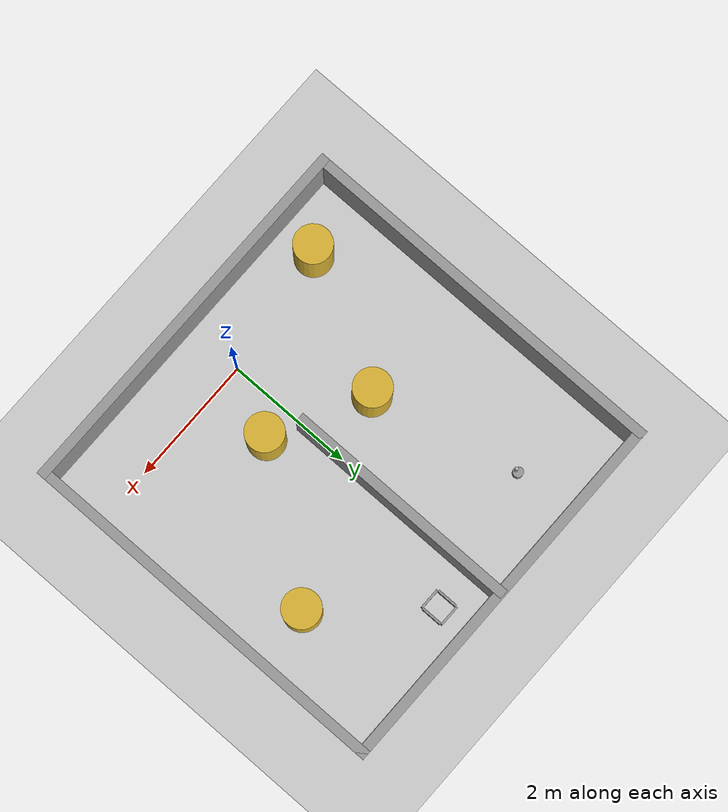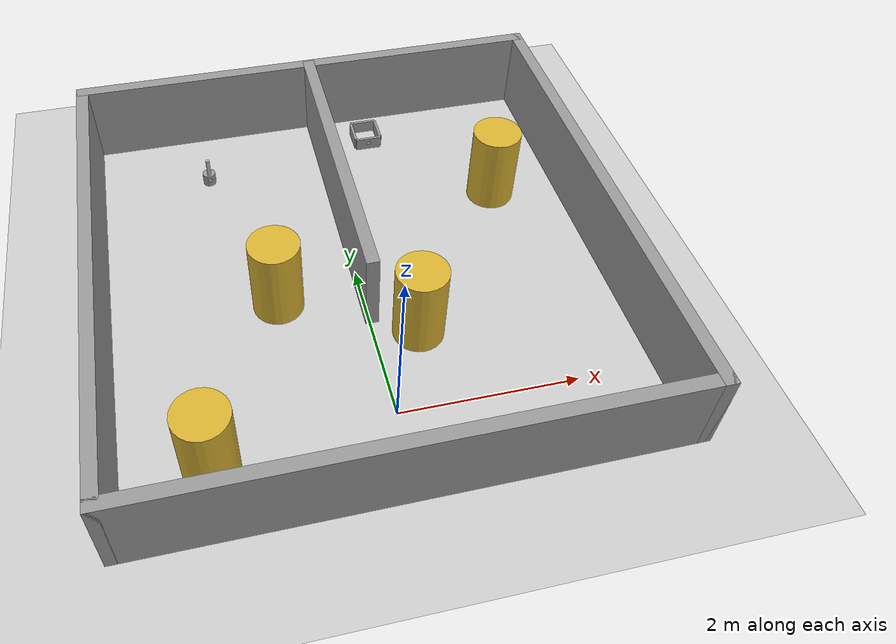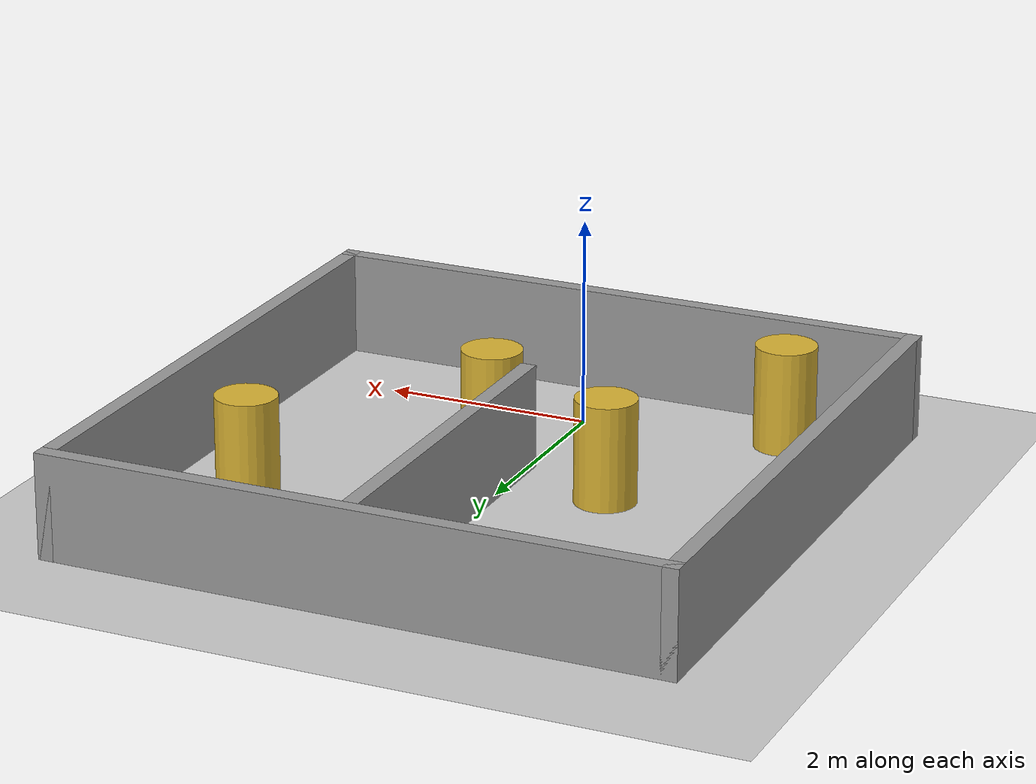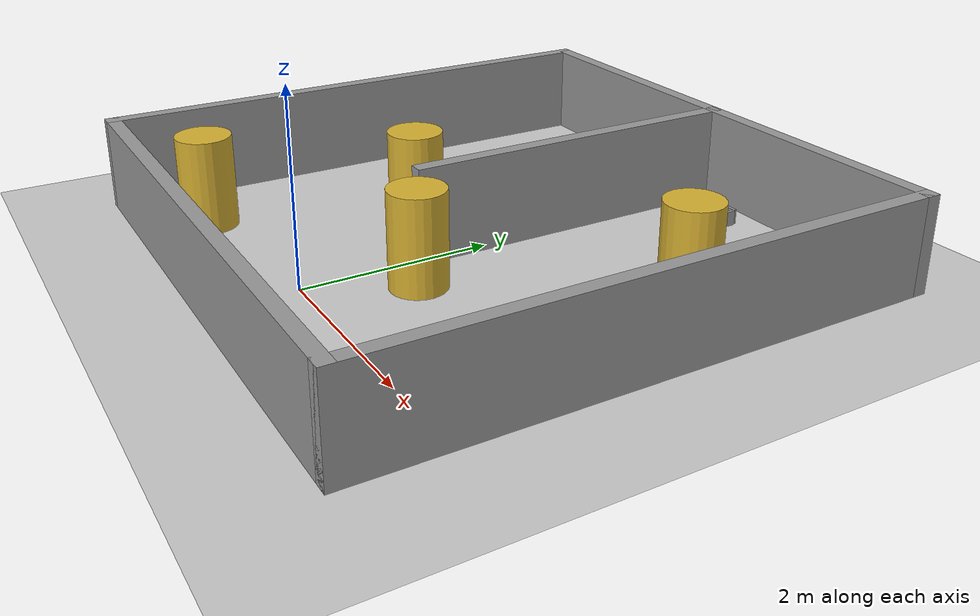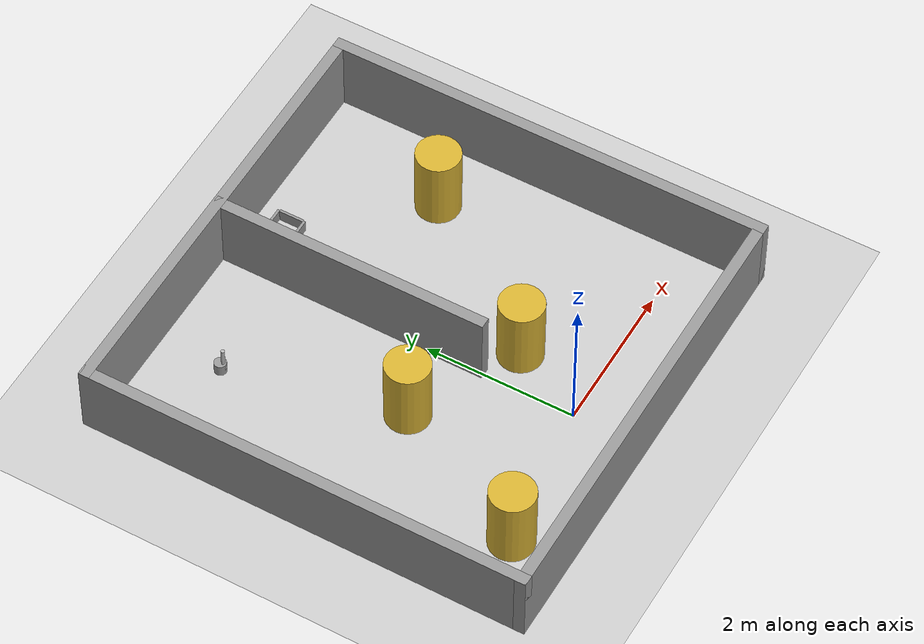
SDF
<sdf version="1.4">
  <world name="default">

    <!-- Global world -->
    <include>
      <uri>model://ground_plane</uri>
    </include>

    <!-- Global light source -->
    <include>
      <uri>model://sun</uri>
    </include>

    <physics type="ode">
      <real_time_update_rate>1000.0</real_time_update_rate>
      <max_step_size>0.001</max_step_size>
      <real_time_factor>1</real_time_factor>
      <ode>
        <solver>
          <type>quick</type>
          <iters>150</iters>
          <precon_iters>0</precon_iters>
          <sor>1.400000</sor>
          <use_dynamic_moi_rescaling>1</use_dynamic_moi_rescaling>
        </solver>
        <constraints>
          <cfm>0.00001</cfm>
          <erp>0.2</erp>
          <contact_max_correcting_vel>2000.000000</contact_max_correcting_vel>
          <contact_surface_layer>0.01000</contact_surface_layer>
        </constraints>
      </ode>
    </physics>

    <!-- Load world -->
    <include>
      <uri>model://turtlebot3_rooms</uri>
    </include>

    <scene>
      <ambient>0.4 0.4 0.4 1</ambient>
      <background>0.7 0.7 0.7 1</background>
      <shadows>true</shadows>
    </scene>

    <gui fullscreen='0'>
      <camera name='user_camera'>
        <pose>0.8 2.0 12.0 0 1.5708 1.5708</pose>
        <view_controller>orbit</view_controller>
      </camera>
    </gui>

  </world>
</sdf>

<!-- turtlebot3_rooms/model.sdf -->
<sdf version='1.6'>
  <model name='turtlebot3_rooms'>
    <link name='link_0'>
      <pose frame=''>0.683315 4.23233 0 0 -0 0</pose>
      <inertial>
        <mass>0.00350583</mass>
        <inertia>
          <ixx>2.82745e-05</ixx>
          <ixy>0</ixy>
          <ixz>0</ixz>
          <iyy>5.98732e-05</iyy>
          <iyz>0</iyz>
          <izz>3.22857e-05</izz>
        </inertia>
        <pose frame=''>0 0 0 0 -0 0</pose>
      </inertial>
      <visual name='visual'>
        <pose frame=''>0 0 0 0 -0 0</pose>
        <geometry>
          <box>
            <size>0.330665 0.034321 0.309211</size>
          </box>
        </geometry>
        <material>
          <lighting>1</lighting>
          <script>
            <uri>file://media/materials/scripts/gazebo.material</uri>
            <name>Gazebo/Grey</name>
          </script>
          <ambient>0.3 0.3 0.3 1</ambient>
          <diffuse>0.7 0.7 0.7 1</diffuse>
          <specular>0.01 0.01 0.01 1</specular>
          <emissive>0 0 0 1</emissive>
        </material>
        <cast_shadows>1</cast_shadows>
        <transparency>0</transparency>
      </visual>
      <collision name='collision'>
        <laser_retro>0</laser_retro>
        <max_contacts>10</max_contacts>
        <pose frame=''>0 0 0 0 -0 0</pose>
        <geometry>
          <box>
            <size>0.330665 0.034321 0.309211</size>
          </box>
        </geometry>
        <surface>
          <friction>
            <ode>
              <mu>1</mu>
              <mu2>1</mu2>
              <fdir1>0 0 0</fdir1>
              <slip1>0</slip1>
              <slip2>0</slip2>
            </ode>
            <torsional>
              <coefficient>1</coefficient>
              <patch_radius>0</patch_radius>
              <surface_radius>0</surface_radius>
              <use_patch_radius>1</use_patch_radius>
              <ode>
                <slip>0</slip>
              </ode>
            </torsional>
          </friction>
          <bounce>
            <restitution_coefficient>0</restitution_coefficient>
            <threshold>1e+06</threshold>
          </bounce>
          <contact>
            <collide_without_contact>0</collide_without_contact>
            <collide_without_contact_bitmask>1</collide_without_contact_bitmask>
            <collide_bitmask>1</collide_bitmask>
            <ode>
              <soft_cfm>0</soft_cfm>
              <soft_erp>0.2</soft_erp>
              <kp>1e+13</kp>
              <kd>1</kd>
              <max_vel>0.01</max_vel>
              <min_depth>0</min_depth>
            </ode>
            <bullet>
              <split_impulse>1</split_impulse>
              <split_impulse_penetration_threshold>-0.01</split_impulse_penetration_threshold>
              <soft_cfm>0</soft_cfm>
              <soft_erp>0.2</soft_erp>
              <kp>1e+13</kp>
              <kd>1</kd>
            </bullet>
          </contact>
        </surface>
      </collision>
    </link>
    <link name='link_0_clone'>
      <pose frame=''>0.682862 4.5976 0 0 -0 0</pose>
      <inertial>
        <mass>0.00350583</mass>
        <inertia>
          <ixx>2.82745e-05</ixx>
          <ixy>0</ixy>
          <ixz>0</ixz>
          <iyy>5.98732e-05</iyy>
          <iyz>0</iyz>
          <izz>3.22857e-05</izz>
        </inertia>
        <pose frame=''>0 0 0 0 -0 0</pose>
      </inertial>
      <visual name='visual'>
        <pose frame=''>0 0 0 0 -0 0</pose>
        <geometry>
          <box>
            <size>0.330665 0.034321 0.309211</size>
          </box>
        </geometry>
        <material>
          <lighting>1</lighting>
          <script>
            <uri>file://media/materials/scripts/gazebo.material</uri>
            <name>Gazebo/Grey</name>
          </script>
          <ambient>0.3 0.3 0.3 1</ambient>
          <diffuse>0.7 0.7 0.7 1</diffuse>
          <specular>0.01 0.01 0.01 1</specular>
          <emissive>0 0 0 1</emissive>
          <shader type='pixel'/>
        </material>
        <cast_shadows>1</cast_shadows>
        <transparency>0</transparency>
      </visual>
      <collision name='collision'>
        <laser_retro>0</laser_retro>
        <max_contacts>10</max_contacts>
        <pose frame=''>0 0 0 0 -0 0</pose>
        <geometry>
          <box>
            <size>0.330665 0.034321 0.309211</size>
          </box>
        </geometry>
        <surface>
          <friction>
            <ode>
              <mu>1</mu>
              <mu2>1</mu2>
              <fdir1>0 0 0</fdir1>
              <slip1>0</slip1>
              <slip2>0</slip2>
            </ode>
            <torsional>
              <coefficient>1</coefficient>
              <patch_radius>0</patch_radius>
              <surface_radius>0</surface_radius>
              <use_patch_radius>1</use_patch_radius>
              <ode>
                <slip>0</slip>
              </ode>
            </torsional>
          </friction>
          <bounce>
            <restitution_coefficient>0</restitution_coefficient>
            <threshold>1e+06</threshold>
          </bounce>
          <contact>
            <collide_without_contact>0</collide_without_contact>
            <collide_without_contact_bitmask>1</collide_without_contact_bitmask>
            <collide_bitmask>1</collide_bitmask>
            <ode>
              <soft_cfm>0</soft_cfm>
              <soft_erp>0.2</soft_erp>
              <kp>1e+13</kp>
              <kd>1</kd>
              <max_vel>0.01</max_vel>
              <min_depth>0</min_depth>
            </ode>
            <bullet>
              <split_impulse>1</split_impulse>
              <split_impulse_penetration_threshold>-0.01</split_impulse_penetration_threshold>
              <soft_cfm>0</soft_cfm>
              <soft_erp>0.2</soft_erp>
              <kp>1e+13</kp>
              <kd>1</kd>
            </bullet>
          </contact>
        </surface>
      </collision>
    </link>
    <link name='link_0_clone_0'>
      <pose frame=''>0.84811 4.41524 0 0 -0 1.5708</pose>
      <inertial>
        <mass>0.00350583</mass>
        <inertia>
          <ixx>2.82745e-05</ixx>
          <ixy>0</ixy>
          <ixz>0</ixz>
          <iyy>5.98732e-05</iyy>
          <iyz>0</iyz>
          <izz>3.22857e-05</izz>
        </inertia>
        <pose frame=''>0 0 0 0 -0 0</pose>
      </inertial>
      <visual name='visual'>
        <pose frame=''>0 0 0 0 -0 0</pose>
        <geometry>
          <box>
            <size>0.330665 0.034321 0.309211</size>
          </box>
        </geometry>
        <material>
          <lighting>1</lighting>
          <script>
            <uri>file://media/materials/scripts/gazebo.material</uri>
            <name>Gazebo/Grey</name>
          </script>
          <ambient>0.3 0.3 0.3 1</ambient>
          <diffuse>0.7 0.7 0.7 1</diffuse>
          <specular>0.01 0.01 0.01 1</specular>
          <emissive>0 0 0 1</emissive>
          <shader type='pixel'/>
        </material>
        <cast_shadows>1</cast_shadows>
        <transparency>0</transparency>
      </visual>
      <collision name='collision'>
        <laser_retro>0</laser_retro>
        <max_contacts>10</max_contacts>
        <pose frame=''>0 0 0 0 -0 0</pose>
        <geometry>
          <box>
            <size>0.330665 0.034321 0.309211</size>
          </box>
        </geometry>
        <surface>
          <friction>
            <ode>
              <mu>1</mu>
              <mu2>1</mu2>
              <fdir1>0 0 0</fdir1>
              <slip1>0</slip1>
              <slip2>0</slip2>
            </ode>
            <torsional>
              <coefficient>1</coefficient>
              <patch_radius>0</patch_radius>
              <surface_radius>0</surface_radius>
              <use_patch_radius>1</use_patch_radius>
              <ode>
                <slip>0</slip>
              </ode>
            </torsional>
          </friction>
          <bounce>
            <restitution_coefficient>0</restitution_coefficient>
            <threshold>1e+06</threshold>
          </bounce>
          <contact>
            <collide_without_contact>0</collide_without_contact>
            <collide_without_contact_bitmask>1</collide_without_contact_bitmask>
            <collide_bitmask>1</collide_bitmask>
            <ode>
              <soft_cfm>0</soft_cfm>
              <soft_erp>0.2</soft_erp>
              <kp>1e+13</kp>
              <kd>1</kd>
              <max_vel>0.01</max_vel>
              <min_depth>0</min_depth>
            </ode>
            <bullet>
              <split_impulse>1</split_impulse>
              <split_impulse_penetration_threshold>-0.01</split_impulse_penetration_threshold>
              <soft_cfm>0</soft_cfm>
              <soft_erp>0.2</soft_erp>
              <kp>1e+13</kp>
              <kd>1</kd>
            </bullet>
          </contact>
        </surface>
      </collision>
    </link>
    <link name='link_0_clone_1'>
      <pose frame=''>0.513944 4.41515 0 0 0 -1.5708</pose>
      <inertial>
        <mass>0.00350583</mass>
        <inertia>
          <ixx>2.82745e-05</ixx>
          <ixy>0</ixy>
          <ixz>0</ixz>
          <iyy>5.98732e-05</iyy>
          <iyz>0</iyz>
          <izz>3.22857e-05</izz>
        </inertia>
        <pose frame=''>0 0 0 0 -0 0</pose>
      </inertial>
      <visual name='visual'>
        <pose frame=''>0 0 0 0 -0 0</pose>
        <geometry>
          <box>
            <size>0.330665 0.034321 0.309211</size>
          </box>
        </geometry>
        <material>
          <lighting>1</lighting>
          <script>
            <uri>file://media/materials/scripts/gazebo.material</uri>
            <name>Gazebo/Grey</name>
          </script>
          <ambient>0.3 0.3 0.3 1</ambient>
          <diffuse>0.7 0.7 0.7 1</diffuse>
          <specular>0.01 0.01 0.01 1</specular>
          <emissive>0 0 0 1</emissive>
          <shader type='pixel'/>
        </material>
        <cast_shadows>1</cast_shadows>
        <transparency>0</transparency>
      </visual>
      <collision name='collision'>
        <laser_retro>0</laser_retro>
        <max_contacts>10</max_contacts>
        <pose frame=''>0 0 0 0 -0 0</pose>
        <geometry>
          <box>
            <size>0.330665 0.034321 0.309211</size>
          </box>
        </geometry>
        <surface>
          <friction>
            <ode>
              <mu>1</mu>
              <mu2>1</mu2>
              <fdir1>0 0 0</fdir1>
              <slip1>0</slip1>
              <slip2>0</slip2>
            </ode>
            <torsional>
              <coefficient>1</coefficient>
              <patch_radius>0</patch_radius>
              <surface_radius>0</surface_radius>
              <use_patch_radius>1</use_patch_radius>
              <ode>
                <slip>0</slip>
              </ode>
            </torsional>
          </friction>
          <bounce>
            <restitution_coefficient>0</restitution_coefficient>
            <threshold>1e+06</threshold>
          </bounce>
          <contact>
            <collide_without_contact>0</collide_without_contact>
            <collide_without_contact_bitmask>1</collide_without_contact_bitmask>
            <collide_bitmask>1</collide_bitmask>
            <ode>
              <soft_cfm>0</soft_cfm>
              <soft_erp>0.2</soft_erp>
              <kp>1e+13</kp>
              <kd>1</kd>
              <max_vel>0.01</max_vel>
              <min_depth>0</min_depth>
            </ode>
            <bullet>
              <split_impulse>1</split_impulse>
              <split_impulse_penetration_threshold>-0.01</split_impulse_penetration_threshold>
              <soft_cfm>0</soft_cfm>
              <soft_erp>0.2</soft_erp>
              <kp>1e+13</kp>
              <kd>1</kd>
            </bullet>
          </contact>
        </surface>
      </collision>
    </link>
      <link name='link_0'>
        <pose frame=''>-1.50431 3.99994 0 0 -0 0</pose>
        <inertial>
          <mass>0.00123934</mass>
          <inertia>
            <ixx>2.13894e-06</ixx>
            <ixy>0</ixy>
            <ixz>0</ixz>
            <iyy>2.13894e-06</iyy>
            <iyz>0</iyz>
            <izz>3.73085e-06</izz>
          </inertia>
          <pose frame=''>0 0 0 0 -0 0</pose>
        </inertial>
        <visual name='visual'>
          <pose frame=''>0 0 0 0 -0 0</pose>
          <geometry>
            <cylinder>
              <radius>0.08</radius>
              <length>0.3</length>
            </cylinder>
          </geometry>
          <material>
            <lighting>1</lighting>
            <script>
              <uri>file://media/materials/scripts/gazebo.material</uri>
              <name>Gazebo/Grey</name>
            </script>
            <ambient>0.3 0.3 0.3 1</ambient>
            <diffuse>0.7 0.7 0.7 1</diffuse>
            <specular>0.01 0.01 0.01 1</specular>
            <emissive>0 0 0 1</emissive>
          </material>
          <cast_shadows>1</cast_shadows>
          <transparency>0</transparency>
        </visual>
        <collision name='collision'>
          <laser_retro>0</laser_retro>
          <max_contacts>10</max_contacts>
          <pose frame=''>0 0 0 0 -0 0</pose>
          <geometry>
            <cylinder>
              <radius>0.08</radius>
              <length>0.3</length>
            </cylinder>
          </geometry>
          <surface>
            <friction>
              <ode>
                <mu>1</mu>
                <mu2>1</mu2>
                <fdir1>0 0 0</fdir1>
                <slip1>0</slip1>
                <slip2>0</slip2>
              </ode>
              <torsional>
                <coefficient>1</coefficient>
                <patch_radius>0</patch_radius>
                <surface_radius>0</surface_radius>
                <use_patch_radius>1</use_patch_radius>
                <ode>
                  <slip>0</slip>
                </ode>
              </torsional>
            </friction>
            <bounce>
              <restitution_coefficient>0</restitution_coefficient>
              <threshold>1e+06</threshold>
            </bounce>
            <contact>
              <collide_without_contact>0</collide_without_contact>
              <collide_without_contact_bitmask>1</collide_without_contact_bitmask>
              <collide_bitmask>1</collide_bitmask>
              <ode>
                <soft_cfm>0</soft_cfm>
                <soft_erp>0.2</soft_erp>
                <kp>1e+13</kp>
                <kd>1</kd>
                <max_vel>0.01</max_vel>
                <min_depth>0</min_depth>
              </ode>
              <bullet>
                <split_impulse>1</split_impulse>
                <split_impulse_penetration_threshold>-0.01</split_impulse_penetration_threshold>
                <soft_cfm>0</soft_cfm>
                <soft_erp>0.2</soft_erp>
                <kp>1e+13</kp>
                <kd>1</kd>
              </bullet>
            </contact>
          </surface>
        </collision>
      </link>
      <link name='link_1'>
        <pose frame=''>-0.960899 1.71925 0.5 0 -0 0</pose>
        <inertial>
          <mass>0.341779</mass>
          <inertia>
            <ixx>0.0357823</ixx>
            <ixy>0</ixy>
            <ixz>0</ixz>
            <iyy>0.0357823</iyy>
            <iyz>0</iyz>
            <izz>0.0146016</izz>
          </inertia>
          <pose frame=''>0 0 0 0 -0 0</pose>
        </inertial>
        <visual name='visual'>
          <pose frame=''>0 0 0 0 -0 0</pose>
          <geometry>
            <cylinder>
              <radius>0.292309</radius>
              <length>1</length>
            </cylinder>
          </geometry>
          <material>
            <lighting>1</lighting>
            <script>
              <uri>file://media/materials/scripts/gazebo.material</uri>
              <name>Gazebo/Gold</name>
            </script>
            <ambient>0.3 0.3 0.3 1</ambient>
            <diffuse>0.7 0.7 0.7 1</diffuse>
            <specular>0.01 0.01 0.01 1</specular>
            <emissive>0 0 0 1</emissive>
          </material>
          <cast_shadows>1</cast_shadows>
          <transparency>0</transparency>
        </visual>
        <collision name='collision'>
          <laser_retro>0</laser_retro>
          <max_contacts>10</max_contacts>
          <pose frame=''>0 0 0 0 -0 0</pose>
          <geometry>
            <cylinder>
              <radius>0.292309</radius>
              <length>1</length>
            </cylinder>
          </geometry>
          <surface>
            <friction>
              <ode>
                <mu>1</mu>
                <mu2>1</mu2>
                <fdir1>0 0 0</fdir1>
                <slip1>0</slip1>
                <slip2>0</slip2>
              </ode>
              <torsional>
                <coefficient>1</coefficient>
                <patch_radius>0</patch_radius>
                <surface_radius>0</surface_radius>
                <use_patch_radius>1</use_patch_radius>
                <ode>
                  <slip>0</slip>
                </ode>
              </torsional>
            </friction>
            <bounce>
              <restitution_coefficient>0</restitution_coefficient>
              <threshold>1e+06</threshold>
            </bounce>
            <contact>
              <collide_without_contact>0</collide_without_contact>
              <collide_without_contact_bitmask>1</collide_without_contact_bitmask>
              <collide_bitmask>1</collide_bitmask>
              <ode>
                <soft_cfm>0</soft_cfm>
                <soft_erp>0.2</soft_erp>
                <kp>1e+13</kp>
                <kd>1</kd>
                <max_vel>0.01</max_vel>
                <min_depth>0</min_depth>
              </ode>
              <bullet>
                <split_impulse>1</split_impulse>
                <split_impulse_penetration_threshold>-0.01</split_impulse_penetration_threshold>
                <soft_cfm>0</soft_cfm>
                <soft_erp>0.2</soft_erp>
                <kp>1e+13</kp>
                <kd>1</kd>
              </bullet>
            </contact>
          </surface>
        </collision>
      </link>
      <link name='link_1_clone'>
        <pose frame=''>-1.9402 -0.24147 0.5 0 -0 0</pose>
        <inertial>
          <mass>0.341779</mass>
          <inertia>
            <ixx>0.0357823</ixx>
            <ixy>0</ixy>
            <ixz>0</ixz>
            <iyy>0.0357823</iyy>
            <iyz>0</iyz>
            <izz>0.0146016</izz>
          </inertia>
          <pose frame=''>0 0 0 0 -0 0</pose>
        </inertial>
        <visual name='visual'>
          <pose frame=''>0 0 0 0 -0 0</pose>
          <geometry>
            <cylinder>
              <radius>0.292309</radius>
              <length>1</length>
            </cylinder>
          </geometry>
          <material>
            <lighting>1</lighting>
            <script>
              <uri>file://media/materials/scripts/gazebo.material</uri>
              <name>Gazebo/Gold</name>
            </script>
            <ambient>0.3 0.3 0.3 1</ambient>
            <diffuse>0.7 0.7 0.7 1</diffuse>
            <specular>0.01 0.01 0.01 1</specular>
            <emissive>0 0 0 1</emissive>
            <shader type='pixel'/>
          </material>
          <cast_shadows>1</cast_shadows>
          <transparency>0</transparency>
        </visual>
        <collision name='collision'>
          <laser_retro>0</laser_retro>
          <max_contacts>10</max_contacts>
          <pose frame=''>0 0 0 0 -0 0</pose>
          <geometry>
            <cylinder>
              <radius>0.292309</radius>
              <length>1</length>
            </cylinder>
          </geometry>
          <surface>
            <friction>
              <ode>
                <mu>1</mu>
                <mu2>1</mu2>
                <fdir1>0 0 0</fdir1>
                <slip1>0</slip1>
                <slip2>0</slip2>
              </ode>
              <torsional>
                <coefficient>1</coefficient>
                <patch_radius>0</patch_radius>
                <surface_radius>0</surface_radius>
                <use_patch_radius>1</use_patch_radius>
                <ode>
                  <slip>0</slip>
                </ode>
              </torsional>
            </friction>
            <bounce>
              <restitution_coefficient>0</restitution_coefficient>
              <threshold>1e+06</threshold>
            </bounce>
            <contact>
              <collide_without_contact>0</collide_without_contact>
              <collide_without_contact_bitmask>1</collide_without_contact_bitmask>
              <collide_bitmask>1</collide_bitmask>
              <ode>
                <soft_cfm>0</soft_cfm>
                <soft_erp>0.2</soft_erp>
                <kp>1e+13</kp>
                <kd>1</kd>
                <max_vel>0.01</max_vel>
                <min_depth>0</min_depth>
              </ode>
              <bullet>
                <split_impulse>1</split_impulse>
                <split_impulse_penetration_threshold>-0.01</split_impulse_penetration_threshold>
                <soft_cfm>0</soft_cfm>
                <soft_erp>0.2</soft_erp>
                <kp>1e+13</kp>
                <kd>1</kd>
              </bullet>
            </contact>
          </surface>
        </collision>
      </link>
      <link name='link_1_clone_0'>
        <pose frame=''>0.49715 0.99994 0.5 0 -0 0</pose>
        <inertial>
          <mass>0.341779</mass>
          <inertia>
            <ixx>0.0357823</ixx>
            <ixy>0</ixy>
            <ixz>0</ixz>
            <iyy>0.0357823</iyy>
            <iyz>0</iyz>
            <izz>0.0146016</izz>
          </inertia>
          <pose frame=''>0 0 0 0 -0 0</pose>
        </inertial>
        <visual name='visual'>
          <pose frame=''>0 0 0 0 -0 0</pose>
          <geometry>
            <cylinder>
              <radius>0.292309</radius>
              <length>1</length>
            </cylinder>
          </geometry>
          <material>
            <lighting>1</lighting>
            <script>
              <uri>file://media/materials/scripts/gazebo.material</uri>
              <name>Gazebo/Gold</name>
            </script>
            <ambient>0.3 0.3 0.3 1</ambient>
            <diffuse>0.7 0.7 0.7 1</diffuse>
            <specular>0.01 0.01 0.01 1</specular>
            <emissive>0 0 0 1</emissive>
            <shader type='pixel'/>
          </material>
          <cast_shadows>1</cast_shadows>
          <transparency>0</transparency>
        </visual>
        <collision name='collision'>
          <laser_retro>0</laser_retro>
          <max_contacts>10</max_contacts>
          <pose frame=''>0 0 0 0 -0 0</pose>
          <geometry>
            <cylinder>
              <radius>0.292309</radius>
              <length>1</length>
            </cylinder>
          </geometry>
          <surface>
            <friction>
              <ode>
                <mu>1</mu>
                <mu2>1</mu2>
                <fdir1>0 0 0</fdir1>
                <slip1>0</slip1>
                <slip2>0</slip2>
              </ode>
              <torsional>
                <coefficient>1</coefficient>
                <patch_radius>0</patch_radius>
                <surface_radius>0</surface_radius>
                <use_patch_radius>1</use_patch_radius>
                <ode>
                  <slip>0</slip>
                </ode>
              </torsional>
            </friction>
            <bounce>
              <restitution_coefficient>0</restitution_coefficient>
              <threshold>1e+06</threshold>
            </bounce>
            <contact>
              <collide_without_contact>0</collide_without_contact>
              <collide_without_contact_bitmask>1</collide_without_contact_bitmask>
              <collide_bitmask>1</collide_bitmask>
              <ode>
                <soft_cfm>0</soft_cfm>
                <soft_erp>0.2</soft_erp>
                <kp>1e+13</kp>
                <kd>1</kd>
                <max_vel>0.01</max_vel>
                <min_depth>0</min_depth>
              </ode>
              <bullet>
                <split_impulse>1</split_impulse>
                <split_impulse_penetration_threshold>-0.01</split_impulse_penetration_threshold>
                <soft_cfm>0</soft_cfm>
                <soft_erp>0.2</soft_erp>
                <kp>1e+13</kp>
                <kd>1</kd>
              </bullet>
            </contact>
          </surface>
        </collision>
      </link>
      <link name='link_1_clone_1'>
        <pose frame=''>2 2.99994 0.5 0 -0 0</pose>
        <inertial>
          <mass>0.341779</mass>
          <inertia>
            <ixx>0.0357823</ixx>
            <ixy>0</ixy>
            <ixz>0</ixz>
            <iyy>0.0357823</iyy>
            <iyz>0</iyz>
            <izz>0.0146016</izz>
          </inertia>
          <pose frame=''>0 0 0 0 -0 0</pose>
        </inertial>
        <visual name='visual'>
          <pose frame=''>0 0 0 0 -0 0</pose>
          <geometry>
            <cylinder>
              <radius>0.292309</radius>
              <length>1</length>
            </cylinder>
          </geometry>
          <material>
            <lighting>1</lighting>
            <script>
              <uri>file://media/materials/scripts/gazebo.material</uri>
              <name>Gazebo/Gold</name>
            </script>
            <ambient>0.3 0.3 0.3 1</ambient>
            <diffuse>0.7 0.7 0.7 1</diffuse>
            <specular>0.01 0.01 0.01 1</specular>
            <emissive>0 0 0 1</emissive>
            <shader type='pixel'/>
          </material>
          <cast_shadows>1</cast_shadows>
          <transparency>0</transparency>
        </visual>
        <collision name='collision'>
          <laser_retro>0</laser_retro>
          <max_contacts>10</max_contacts>
          <pose frame=''>0 0 0 0 -0 0</pose>
          <geometry>
            <cylinder>
              <radius>0.292309</radius>
              <length>1</length>
            </cylinder>
          </geometry>
          <surface>
            <friction>
              <ode>
                <mu>1</mu>
                <mu2>1</mu2>
                <fdir1>0 0 0</fdir1>
                <slip1>0</slip1>
                <slip2>0</slip2>
              </ode>
              <torsional>
                <coefficient>1</coefficient>
                <patch_radius>0</patch_radius>
                <surface_radius>0</surface_radius>
                <use_patch_radius>1</use_patch_radius>
                <ode>
                  <slip>0</slip>
                </ode>
              </torsional>
            </friction>
            <bounce>
              <restitution_coefficient>0</restitution_coefficient>
              <threshold>1e+06</threshold>
            </bounce>
            <contact>
              <collide_without_contact>0</collide_without_contact>
              <collide_without_contact_bitmask>1</collide_without_contact_bitmask>
              <collide_bitmask>1</collide_bitmask>
              <ode>
                <soft_cfm>0</soft_cfm>
                <soft_erp>0.2</soft_erp>
                <kp>1e+13</kp>
                <kd>1</kd>
                <max_vel>0.01</max_vel>
                <min_depth>0</min_depth>
              </ode>
              <bullet>
                <split_impulse>1</split_impulse>
                <split_impulse_penetration_threshold>-0.01</split_impulse_penetration_threshold>
                <soft_cfm>0</soft_cfm>
                <soft_erp>0.2</soft_erp>
                <kp>1e+13</kp>
                <kd>1</kd>
              </bullet>
            </contact>
          </surface>
        </collision>
      </link>
      <model name='ar_marker'>
        <static>1</static>
        <link name='link'>
          <visual name='visual'>
            <geometry>
              <mesh>
                <uri>model://ar_marker/meshes/Marker0.dae</uri>
                <scale>0.1 0.1 0.1</scale>
              </mesh>
            </geometry>
          </visual>
        </link>
        <pose frame=''>-1.5 3.92 0.066 0 0 -1.5708</pose>
      </model>
      <model name='ar_marker_clone'>
        <static>1</static>
        <link name='link'>
          <visual name='visual'>
            <geometry>
              <mesh>
                <uri>model://ar_marker/meshes/Marker0.dae</uri>
                <scale>0.1 0.1 0.1</scale>
              </mesh>
            </geometry>
          </visual>
        </link>
        <pose frame=''>0.68 4.21 0.066 0 0 -1.5708</pose>
      </model>
      <model name='rooms'>
        <pose frame=''>0 1.99994 0 0 -0 0</pose>
        <link name='Wall_14'>
          <collision name='Wall_14_Collision'>
            <geometry>
              <box>
                <size>6 0.15 1</size>
              </box>
            </geometry>
            <pose frame=''>0 0 0.5 0 -0 0</pose>
          </collision>
          <visual name='Wall_14_Visual'>
            <pose frame=''>0 0 0.5 0 -0 0</pose>
            <geometry>
              <box>
                <size>6 0.15 1</size>
              </box>
            </geometry>
            <material>
              <script>
                <uri>file://media/materials/scripts/gazebo.material</uri>
                <name>Gazebo/Grey</name>
              </script>
              <ambient>1 1 1 1</ambient>
            </material>
          </visual>
          <pose frame=''>0 -2.925 0 0 -0 0</pose>
        </link>
        <link name='Wall_16'>
          <collision name='Wall_16_Collision'>
            <geometry>
              <box>
                <size>6 0.15 1</size>
              </box>
            </geometry>
            <pose frame=''>0 0 0.5 0 -0 0</pose>
          </collision>
          <visual name='Wall_16_Visual'>
            <pose frame=''>0 0 0.5 0 -0 0</pose>
            <geometry>
              <box>
                <size>6 0.15 1</size>
              </box>
            </geometry>
            <material>
              <script>
                <uri>file://media/materials/scripts/gazebo.material</uri>
                <name>Gazebo/Grey</name>
              </script>
              <ambient>1 1 1 1</ambient>
            </material>
          </visual>
          <pose frame=''>-2.925 0 0 0 -0 1.5708</pose>
        </link>
        <link name='Wall_18'>
          <collision name='Wall_18_Collision'>
            <geometry>
              <box>
                <size>6 0.15 1</size>
              </box>
            </geometry>
            <pose frame=''>0 0 0.5 0 -0 0</pose>
          </collision>
          <visual name='Wall_18_Visual'>
            <pose frame=''>0 0 0.5 0 -0 0</pose>
            <geometry>
              <box>
                <size>6 0.15 1</size>
              </box>
            </geometry>
            <material>
              <script>
                <uri>file://media/materials/scripts/gazebo.material</uri>
                <name>Gazebo/Grey</name>
              </script>
              <ambient>1 1 1 1</ambient>
            </material>
          </visual>
          <pose frame=''>2.925 0 0 0 -0 1.5708</pose>
        </link>
        <link name='Wall_20'>
          <collision name='Wall_20_Collision'>
            <geometry>
              <box>
                <size>6 0.15 1</size>
              </box>
            </geometry>
            <pose frame=''>0 0 0.5 0 -0 0</pose>
          </collision>
          <visual name='Wall_20_Visual'>
            <pose frame=''>0 0 0.5 0 -0 0</pose>
            <geometry>
              <box>
                <size>6 0.15 1</size>
              </box>
            </geometry>
            <material>
              <script>
                <uri>file://media/materials/scripts/gazebo.material</uri>
                <name>Gazebo/Grey</name>
              </script>
              <ambient>1 1 1 1</ambient>
            </material>
          </visual>
          <pose frame=''>0 2.925 0 0 -0 0</pose>
        </link>
        <link name='Wall_22'>
          <collision name='Wall_22_Collision'>
            <geometry>
              <box>
                <size>3.75 0.15 1</size>
              </box>
            </geometry>
            <pose frame=''>0 0 0.5 0 -0 0</pose>
          </collision>
          <visual name='Wall_22_Visual'>
            <pose frame=''>0 0 0.5 0 -0 0</pose>
            <geometry>
              <box>
                <size>3.75 0.15 1</size>
              </box>
            </geometry>
            <material>
              <script>
                <uri>file://media/materials/scripts/gazebo.material</uri>
                <name>Gazebo/Grey</name>
              </script>
              <ambient>1 1 1 1</ambient>
            </material>
          </visual>
          <pose frame=''>0.022 1.101 0 0 0 -1.5708</pose>
        </link>
        <link name='Wall_22'>
          <collision name='Wall_22_Collision'>
            <geometry>
              <box>
                <size>3.75 0.15 1</size>
              </box>
            </geometry>
            <pose frame=''>0 0 0.5 0 -0 0</pose>
          </collision>
          <visual name='Wall_22_Visual'>
            <pose frame=''>0 0 0.5 0 -0 0</pose>
            <geometry>
              <box>
                <size>3.75 0.15 1</size>
              </box>
            </geometry>
            <material>
              <script>
                <uri>file://media/materials/scripts/gazebo.material</uri>
                <name>Gazebo/Grey</name>
              </script>
              <ambient>1 1 1 1</ambient>
            </material>
          </visual>
          <pose frame=''>0.022 1.101 0 0 0 -1.5708</pose>
        </link>
        <static>1</static>
      </model>
      <model name='small_beer'>
        <link name='link'>
          <pose frame=''>0 0 0.08 0 -0 0</pose>
          <inertial>
            <mass>0.01</mass>
            <inertia>
              <ixx>4.7583e-05</ixx>
              <ixy>0</ixy>
              <ixz>0</ixz>
              <iyy>4.7583e-05</iyy>
              <iyz>0</iyz>
              <izz>3.125e-06</izz>
            </inertia>
          </inertial>
          <collision name='collision'>
            <geometry>
              <cylinder>
                <radius>0.025</radius>
                <length>0.235</length>
              </cylinder>
            </geometry>
            <surface>
              <friction>
                <ode>
                  <mu>1e+06</mu>
                  <mu2>10000</mu2>
                </ode>
              </friction>
              <contact>
                <ode>
                  <kp>1e+06</kp>
                  <kd>100</kd>
                  <max_vel>1</max_vel>
                  <min_depth>0.002</min_depth>
                </ode>
              </contact>
            </surface>
          </collision>
          <visual name='visual'>
            <geometry>
              <cylinder>
                <radius>0.025</radius>
                <length>0.235</length>
              </cylinder>
            </geometry>
            <material>
              <script>
                <uri>model://small_beer/materials/scripts</uri>
                <uri>model://small_beer/materials/textures</uri>
                <name>Beer/Diffuse</name>
              </script>
            </material>
          </visual>
        </link>
        <pose frame=''>-1.5 3.96 0.195 0 -0 0</pose>
      </model>
      <static>1</static>
      <allow_auto_disable>0</allow_auto_disable>
      <pose frame=''>-0 1e-06 0 0 -0 0</pose>
  </model>
</sdf>
